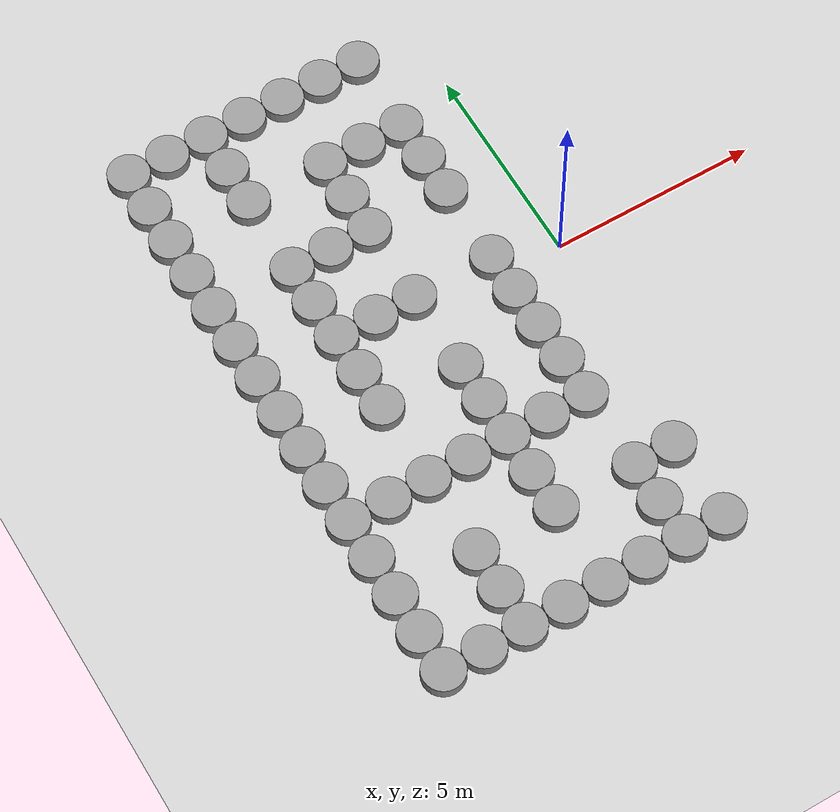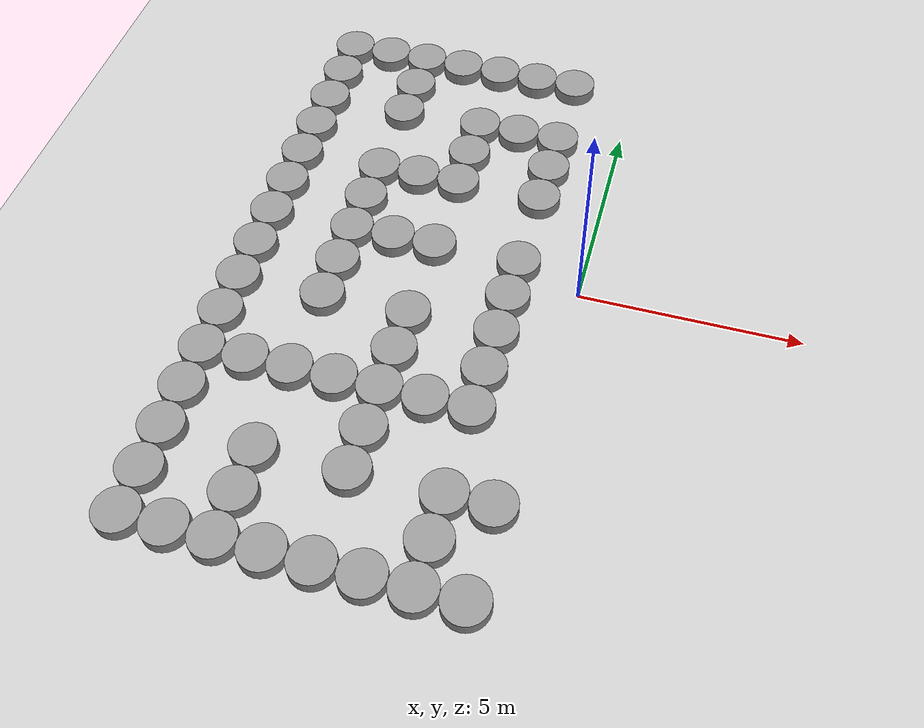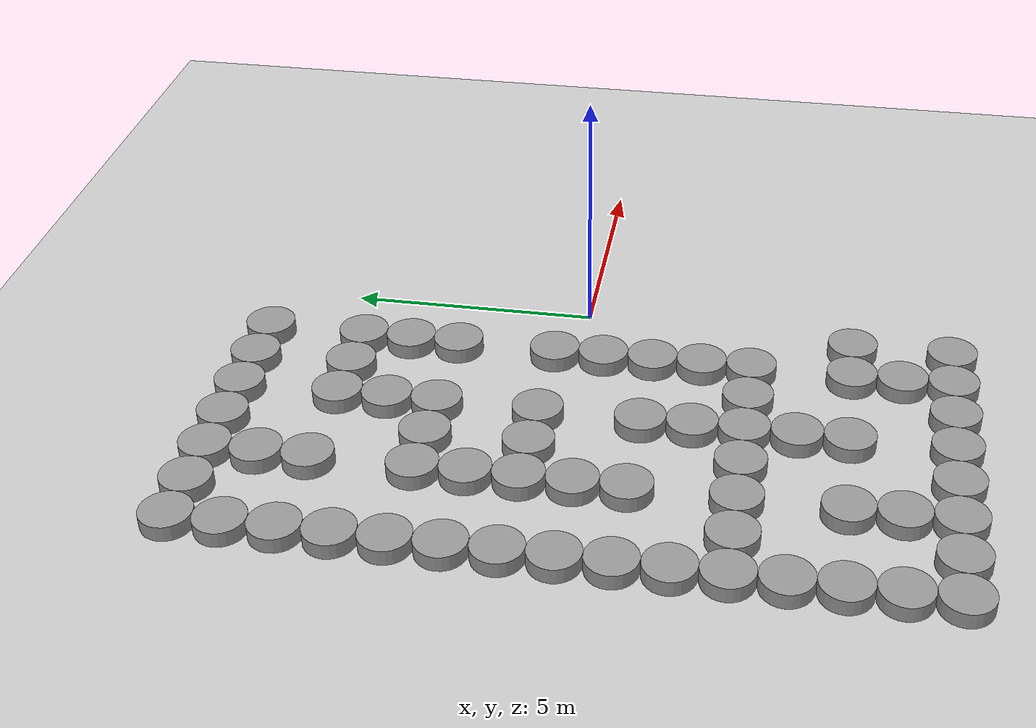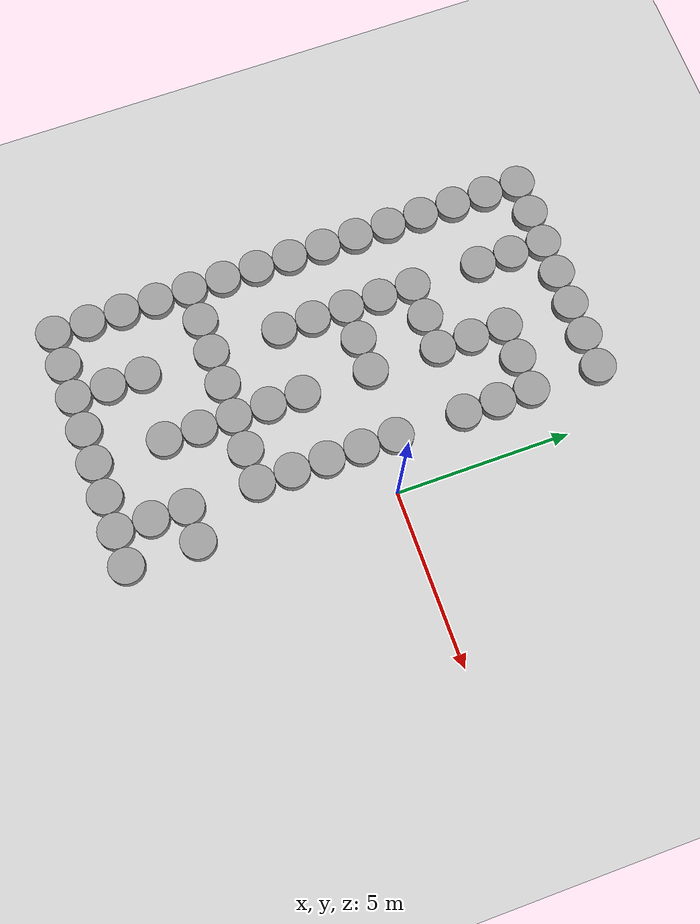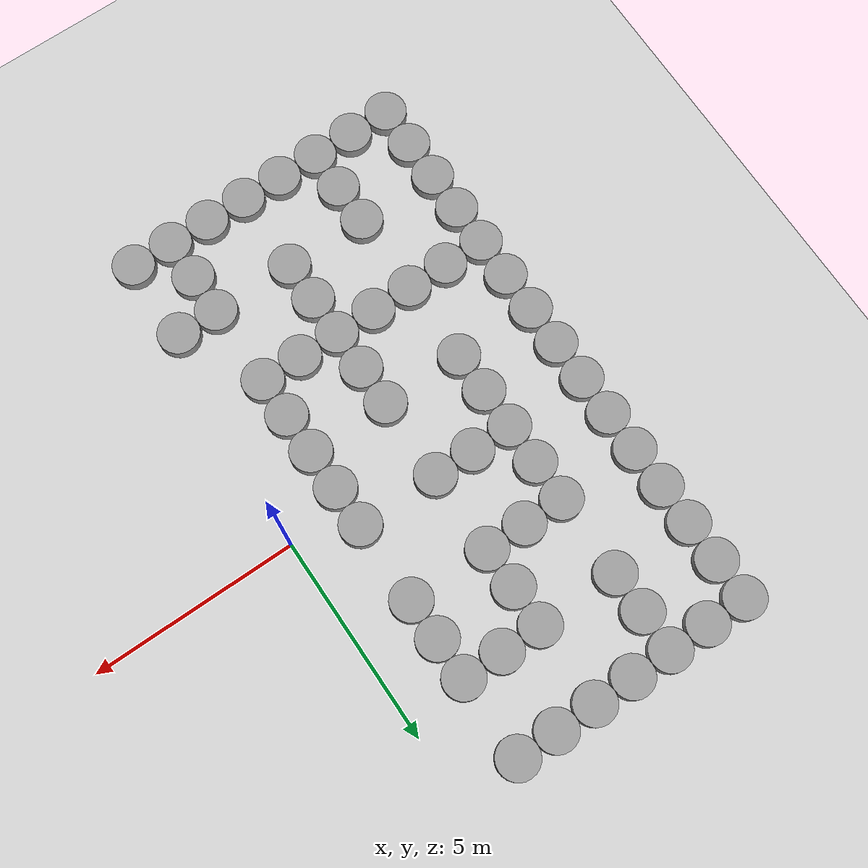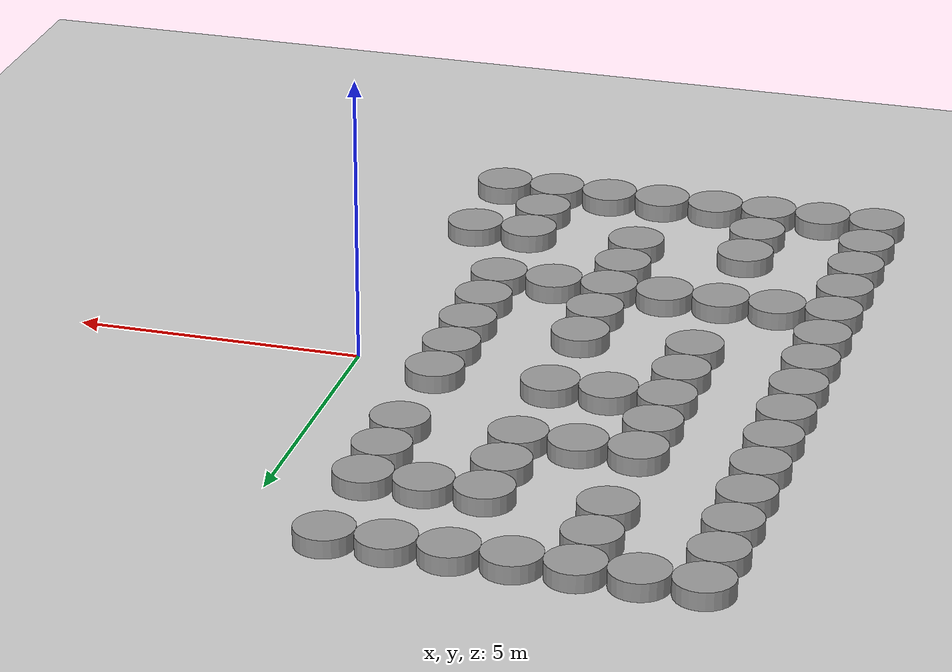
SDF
<sdf version="1.8">
 <world name="block_maze">
  <model name="ground_plane">
   <static>true</static>
   <link name="link">
    <collision name="collision">
     <geometry><plane><normal>0 0 1</normal><size>100 100</size></plane></geometry>
    </collision>
    <visual name="visual">
     <geometry><plane><normal>0 0 1</normal><size>100 100</size></plane></geometry>
     <material><ambient>0.5 0.5 0.5 1</ambient><diffuse>0.8 0.8 0.8 1</diffuse></material>
    </visual>
   </link>
  </model>
  <model name="wall_0_0">
   <static>true</static>
   <pose>-7.5 -7.5 0.1 0 0 0</pose>
   <link name="link">
    <collision name="collision">
     <geometry><cylinder><radius>0.5</radius><length>0.4</length></cylinder></geometry>
    </collision>
    <visual name="visual">
     <geometry><cylinder><radius>0.5</radius><length>0.4</length></cylinder></geometry>
     <material><ambient>0.6 0.6 0.6 1</ambient><diffuse>0.6 0.6 0.6 1</diffuse></material>
    </visual>
   </link>
  </model>
  <model name="wall_1_0">
   <static>true</static>
   <pose>-6.5 -7.5 0.1 0 0 0</pose>
   <link name="link">
    <collision name="collision">
     <geometry><cylinder><radius>0.5</radius><length>0.4</length></cylinder></geometry>
    </collision>
    <visual name="visual">
     <geometry><cylinder><radius>0.5</radius><length>0.4</length></cylinder></geometry>
     <material><ambient>0.6 0.6 0.6 1</ambient><diffuse>0.6 0.6 0.6 1</diffuse></material>
    </visual>
   </link>
  </model>
  <model name="wall_2_0">
   <static>true</static>
   <pose>-5.5 -7.5 0.1 0 0 0</pose>
   <link name="link">
    <collision name="collision">
     <geometry><cylinder><radius>0.5</radius><length>0.4</length></cylinder></geometry>
    </collision>
    <visual name="visual">
     <geometry><cylinder><radius>0.5</radius><length>0.4</length></cylinder></geometry>
     <material><ambient>0.6 0.6 0.6 1</ambient><diffuse>0.6 0.6 0.6 1</diffuse></material>
    </visual>
   </link>
  </model>
  <model name="wall_3_0">
   <static>true</static>
   <pose>-4.5 -7.5 0.1 0 0 0</pose>
   <link name="link">
    <collision name="collision">
     <geometry><cylinder><radius>0.5</radius><length>0.4</length></cylinder></geometry>
    </collision>
    <visual name="visual">
     <geometry><cylinder><radius>0.5</radius><length>0.4</length></cylinder></geometry>
     <material><ambient>0.6 0.6 0.6 1</ambient><diffuse>0.6 0.6 0.6 1</diffuse></material>
    </visual>
   </link>
  </model>
  <model name="wall_4_0">
   <static>true</static>
   <pose>-3.5 -7.5 0.1 0 0 0</pose>
   <link name="link">
    <collision name="collision">
     <geometry><cylinder><radius>0.5</radius><length>0.4</length></cylinder></geometry>
    </collision>
    <visual name="visual">
     <geometry><cylinder><radius>0.5</radius><length>0.4</length></cylinder></geometry>
     <material><ambient>0.6 0.6 0.6 1</ambient><diffuse>0.6 0.6 0.6 1</diffuse></material>
    </visual>
   </link>
  </model>
  <model name="wall_5_0">
   <static>true</static>
   <pose>-2.5 -7.5 0.1 0 0 0</pose>
   <link name="link">
    <collision name="collision">
     <geometry><cylinder><radius>0.5</radius><length>0.4</length></cylinder></geometry>
    </collision>
    <visual name="visual">
     <geometry><cylinder><radius>0.5</radius><length>0.4</length></cylinder></geometry>
     <material><ambient>0.6 0.6 0.6 1</ambient><diffuse>0.6 0.6 0.6 1</diffuse></material>
    </visual>
   </link>
  </model>
  <model name="wall_6_0">
   <static>true</static>
   <pose>-1.5 -7.5 0.1 0 0 0</pose>
   <link name="link">
    <collision name="collision">
     <geometry><cylinder><radius>0.5</radius><length>0.4</length></cylinder></geometry>
    </collision>
    <visual name="visual">
     <geometry><cylinder><radius>0.5</radius><length>0.4</length></cylinder></geometry>
     <material><ambient>0.6 0.6 0.6 1</ambient><diffuse>0.6 0.6 0.6 1</diffuse></material>
    </visual>
   </link>
  </model>
  <model name="wall_7_0">
   <static>true</static>
   <pose>-0.5 -7.5 0.1 0 0 0</pose>
   <link name="link">
    <collision name="collision">
     <geometry><cylinder><radius>0.5</radius><length>0.4</length></cylinder></geometry>
    </collision>
    <visual name="visual">
     <geometry><cylinder><radius>0.5</radius><length>0.4</length></cylinder></geometry>
     <material><ambient>0.6 0.6 0.6 1</ambient><diffuse>0.6 0.6 0.6 1</diffuse></material>
    </visual>
   </link>
  </model>
  <model name="wall_0_1">
   <static>true</static>
   <pose>-7.5 -6.5 0.1 0 0 0</pose>
   <link name="link">
    <collision name="collision">
     <geometry><cylinder><radius>0.5</radius><length>0.4</length></cylinder></geometry>
    </collision>
    <visual name="visual">
     <geometry><cylinder><radius>0.5</radius><length>0.4</length></cylinder></geometry>
     <material><ambient>0.6 0.6 0.6 1</ambient><diffuse>0.6 0.6 0.6 1</diffuse></material>
    </visual>
   </link>
  </model>
  <model name="wall_2_1">
   <static>true</static>
   <pose>-5.5 -6.5 0.1 0 0 0</pose>
   <link name="link">
    <collision name="collision">
     <geometry><cylinder><radius>0.5</radius><length>0.4</length></cylinder></geometry>
    </collision>
    <visual name="visual">
     <geometry><cylinder><radius>0.5</radius><length>0.4</length></cylinder></geometry>
     <material><ambient>0.6 0.6 0.6 1</ambient><diffuse>0.6 0.6 0.6 1</diffuse></material>
    </visual>
   </link>
  </model>
  <model name="wall_6_1">
   <static>true</static>
   <pose>-1.5 -6.5 0.1 0 0 0</pose>
   <link name="link">
    <collision name="collision">
     <geometry><cylinder><radius>0.5</radius><length>0.4</length></cylinder></geometry>
    </collision>
    <visual name="visual">
     <geometry><cylinder><radius>0.5</radius><length>0.4</length></cylinder></geometry>
     <material><ambient>0.6 0.6 0.6 1</ambient><diffuse>0.6 0.6 0.6 1</diffuse></material>
    </visual>
   </link>
  </model>
  <model name="wall_0_2">
   <static>true</static>
   <pose>-7.5 -5.5 0.1 0 0 0</pose>
   <link name="link">
    <collision name="collision">
     <geometry><cylinder><radius>0.5</radius><length>0.4</length></cylinder></geometry>
    </collision>
    <visual name="visual">
     <geometry><cylinder><radius>0.5</radius><length>0.4</length></cylinder></geometry>
     <material><ambient>0.6 0.6 0.6 1</ambient><diffuse>0.6 0.6 0.6 1</diffuse></material>
    </visual>
   </link>
  </model>
  <model name="wall_2_2">
   <static>true</static>
   <pose>-5.5 -5.5 0.1 0 0 0</pose>
   <link name="link">
    <collision name="collision">
     <geometry><cylinder><radius>0.5</radius><length>0.4</length></cylinder></geometry>
    </collision>
    <visual name="visual">
     <geometry><cylinder><radius>0.5</radius><length>0.4</length></cylinder></geometry>
     <material><ambient>0.6 0.6 0.6 1</ambient><diffuse>0.6 0.6 0.6 1</diffuse></material>
    </visual>
   </link>
  </model>
  <model name="wall_4_2">
   <static>true</static>
   <pose>-3.5 -5.5 0.1 0 0 0</pose>
   <link name="link">
    <collision name="collision">
     <geometry><cylinder><radius>0.5</radius><length>0.4</length></cylinder></geometry>
    </collision>
    <visual name="visual">
     <geometry><cylinder><radius>0.5</radius><length>0.4</length></cylinder></geometry>
     <material><ambient>0.6 0.6 0.6 1</ambient><diffuse>0.6 0.6 0.6 1</diffuse></material>
    </visual>
   </link>
  </model>
  <model name="wall_6_2">
   <static>true</static>
   <pose>-1.5 -5.5 0.1 0 0 0</pose>
   <link name="link">
    <collision name="collision">
     <geometry><cylinder><radius>0.5</radius><length>0.4</length></cylinder></geometry>
    </collision>
    <visual name="visual">
     <geometry><cylinder><radius>0.5</radius><length>0.4</length></cylinder></geometry>
     <material><ambient>0.6 0.6 0.6 1</ambient><diffuse>0.6 0.6 0.6 1</diffuse></material>
    </visual>
   </link>
  </model>
  <model name="wall_7_2">
   <static>true</static>
   <pose>-0.5 -5.5 0.1 0 0 0</pose>
   <link name="link">
    <collision name="collision">
     <geometry><cylinder><radius>0.5</radius><length>0.4</length></cylinder></geometry>
    </collision>
    <visual name="visual">
     <geometry><cylinder><radius>0.5</radius><length>0.4</length></cylinder></geometry>
     <material><ambient>0.6 0.6 0.6 1</ambient><diffuse>0.6 0.6 0.6 1</diffuse></material>
    </visual>
   </link>
  </model>
  <model name="wall_0_3">
   <static>true</static>
   <pose>-7.5 -4.5 0.1 0 0 0</pose>
   <link name="link">
    <collision name="collision">
     <geometry><cylinder><radius>0.5</radius><length>0.4</length></cylinder></geometry>
    </collision>
    <visual name="visual">
     <geometry><cylinder><radius>0.5</radius><length>0.4</length></cylinder></geometry>
     <material><ambient>0.6 0.6 0.6 1</ambient><diffuse>0.6 0.6 0.6 1</diffuse></material>
    </visual>
   </link>
  </model>
  <model name="wall_4_3">
   <static>true</static>
   <pose>-3.5 -4.5 0.1 0 0 0</pose>
   <link name="link">
    <collision name="collision">
     <geometry><cylinder><radius>0.5</radius><length>0.4</length></cylinder></geometry>
    </collision>
    <visual name="visual">
     <geometry><cylinder><radius>0.5</radius><length>0.4</length></cylinder></geometry>
     <material><ambient>0.6 0.6 0.6 1</ambient><diffuse>0.6 0.6 0.6 1</diffuse></material>
    </visual>
   </link>
  </model>
  <model name="wall_0_4">
   <static>true</static>
   <pose>-7.5 -3.5 0.1 0 0 0</pose>
   <link name="link">
    <collision name="collision">
     <geometry><cylinder><radius>0.5</radius><length>0.4</length></cylinder></geometry>
    </collision>
    <visual name="visual">
     <geometry><cylinder><radius>0.5</radius><length>0.4</length></cylinder></geometry>
     <material><ambient>0.6 0.6 0.6 1</ambient><diffuse>0.6 0.6 0.6 1</diffuse></material>
    </visual>
   </link>
  </model>
  <model name="wall_1_4">
   <static>true</static>
   <pose>-6.5 -3.5 0.1 0 0 0</pose>
   <link name="link">
    <collision name="collision">
     <geometry><cylinder><radius>0.5</radius><length>0.4</length></cylinder></geometry>
    </collision>
    <visual name="visual">
     <geometry><cylinder><radius>0.5</radius><length>0.4</length></cylinder></geometry>
     <material><ambient>0.6 0.6 0.6 1</ambient><diffuse>0.6 0.6 0.6 1</diffuse></material>
    </visual>
   </link>
  </model>
  <model name="wall_2_4">
   <static>true</static>
   <pose>-5.5 -3.5 0.1 0 0 0</pose>
   <link name="link">
    <collision name="collision">
     <geometry><cylinder><radius>0.5</radius><length>0.4</length></cylinder></geometry>
    </collision>
    <visual name="visual">
     <geometry><cylinder><radius>0.5</radius><length>0.4</length></cylinder></geometry>
     <material><ambient>0.6 0.6 0.6 1</ambient><diffuse>0.6 0.6 0.6 1</diffuse></material>
    </visual>
   </link>
  </model>
  <model name="wall_3_4">
   <static>true</static>
   <pose>-4.5 -3.5 0.1 0 0 0</pose>
   <link name="link">
    <collision name="collision">
     <geometry><cylinder><radius>0.5</radius><length>0.4</length></cylinder></geometry>
    </collision>
    <visual name="visual">
     <geometry><cylinder><radius>0.5</radius><length>0.4</length></cylinder></geometry>
     <material><ambient>0.6 0.6 0.6 1</ambient><diffuse>0.6 0.6 0.6 1</diffuse></material>
    </visual>
   </link>
  </model>
  <model name="wall_4_4">
   <static>true</static>
   <pose>-3.5 -3.5 0.1 0 0 0</pose>
   <link name="link">
    <collision name="collision">
     <geometry><cylinder><radius>0.5</radius><length>0.4</length></cylinder></geometry>
    </collision>
    <visual name="visual">
     <geometry><cylinder><radius>0.5</radius><length>0.4</length></cylinder></geometry>
     <material><ambient>0.6 0.6 0.6 1</ambient><diffuse>0.6 0.6 0.6 1</diffuse></material>
    </visual>
   </link>
  </model>
  <model name="wall_5_4">
   <static>true</static>
   <pose>-2.5 -3.5 0.1 0 0 0</pose>
   <link name="link">
    <collision name="collision">
     <geometry><cylinder><radius>0.5</radius><length>0.4</length></cylinder></geometry>
    </collision>
    <visual name="visual">
     <geometry><cylinder><radius>0.5</radius><length>0.4</length></cylinder></geometry>
     <material><ambient>0.6 0.6 0.6 1</ambient><diffuse>0.6 0.6 0.6 1</diffuse></material>
    </visual>
   </link>
  </model>
  <model name="wall_6_4">
   <static>true</static>
   <pose>-1.5 -3.5 0.1 0 0 0</pose>
   <link name="link">
    <collision name="collision">
     <geometry><cylinder><radius>0.5</radius><length>0.4</length></cylinder></geometry>
    </collision>
    <visual name="visual">
     <geometry><cylinder><radius>0.5</radius><length>0.4</length></cylinder></geometry>
     <material><ambient>0.6 0.6 0.6 1</ambient><diffuse>0.6 0.6 0.6 1</diffuse></material>
    </visual>
   </link>
  </model>
  <model name="wall_0_5">
   <static>true</static>
   <pose>-7.5 -2.5 0.1 0 0 0</pose>
   <link name="link">
    <collision name="collision">
     <geometry><cylinder><radius>0.5</radius><length>0.4</length></cylinder></geometry>
    </collision>
    <visual name="visual">
     <geometry><cylinder><radius>0.5</radius><length>0.4</length></cylinder></geometry>
     <material><ambient>0.6 0.6 0.6 1</ambient><diffuse>0.6 0.6 0.6 1</diffuse></material>
    </visual>
   </link>
  </model>
  <model name="wall_4_5">
   <static>true</static>
   <pose>-3.5 -2.5 0.1 0 0 0</pose>
   <link name="link">
    <collision name="collision">
     <geometry><cylinder><radius>0.5</radius><length>0.4</length></cylinder></geometry>
    </collision>
    <visual name="visual">
     <geometry><cylinder><radius>0.5</radius><length>0.4</length></cylinder></geometry>
     <material><ambient>0.6 0.6 0.6 1</ambient><diffuse>0.6 0.6 0.6 1</diffuse></material>
    </visual>
   </link>
  </model>
  <model name="wall_6_5">
   <static>true</static>
   <pose>-1.5 -2.5 0.1 0 0 0</pose>
   <link name="link">
    <collision name="collision">
     <geometry><cylinder><radius>0.5</radius><length>0.4</length></cylinder></geometry>
    </collision>
    <visual name="visual">
     <geometry><cylinder><radius>0.5</radius><length>0.4</length></cylinder></geometry>
     <material><ambient>0.6 0.6 0.6 1</ambient><diffuse>0.6 0.6 0.6 1</diffuse></material>
    </visual>
   </link>
  </model>
  <model name="wall_0_6">
   <static>true</static>
   <pose>-7.5 -1.5 0.1 0 0 0</pose>
   <link name="link">
    <collision name="collision">
     <geometry><cylinder><radius>0.5</radius><length>0.4</length></cylinder></geometry>
    </collision>
    <visual name="visual">
     <geometry><cylinder><radius>0.5</radius><length>0.4</length></cylinder></geometry>
     <material><ambient>0.6 0.6 0.6 1</ambient><diffuse>0.6 0.6 0.6 1</diffuse></material>
    </visual>
   </link>
  </model>
  <model name="wall_2_6">
   <static>true</static>
   <pose>-5.5 -1.5 0.1 0 0 0</pose>
   <link name="link">
    <collision name="collision">
     <geometry><cylinder><radius>0.5</radius><length>0.4</length></cylinder></geometry>
    </collision>
    <visual name="visual">
     <geometry><cylinder><radius>0.5</radius><length>0.4</length></cylinder></geometry>
     <material><ambient>0.6 0.6 0.6 1</ambient><diffuse>0.6 0.6 0.6 1</diffuse></material>
    </visual>
   </link>
  </model>
  <model name="wall_4_6">
   <static>true</static>
   <pose>-3.5 -1.5 0.1 0 0 0</pose>
   <link name="link">
    <collision name="collision">
     <geometry><cylinder><radius>0.5</radius><length>0.4</length></cylinder></geometry>
    </collision>
    <visual name="visual">
     <geometry><cylinder><radius>0.5</radius><length>0.4</length></cylinder></geometry>
     <material><ambient>0.6 0.6 0.6 1</ambient><diffuse>0.6 0.6 0.6 1</diffuse></material>
    </visual>
   </link>
  </model>
  <model name="wall_6_6">
   <static>true</static>
   <pose>-1.5 -1.5 0.1 0 0 0</pose>
   <link name="link">
    <collision name="collision">
     <geometry><cylinder><radius>0.5</radius><length>0.4</length></cylinder></geometry>
    </collision>
    <visual name="visual">
     <geometry><cylinder><radius>0.5</radius><length>0.4</length></cylinder></geometry>
     <material><ambient>0.6 0.6 0.6 1</ambient><diffuse>0.6 0.6 0.6 1</diffuse></material>
    </visual>
   </link>
  </model>
  <model name="wall_0_7">
   <static>true</static>
   <pose>-7.5 -0.5 0.1 0 0 0</pose>
   <link name="link">
    <collision name="collision">
     <geometry><cylinder><radius>0.5</radius><length>0.4</length></cylinder></geometry>
    </collision>
    <visual name="visual">
     <geometry><cylinder><radius>0.5</radius><length>0.4</length></cylinder></geometry>
     <material><ambient>0.6 0.6 0.6 1</ambient><diffuse>0.6 0.6 0.6 1</diffuse></material>
    </visual>
   </link>
  </model>
  <model name="wall_2_7">
   <static>true</static>
   <pose>-5.5 -0.5 0.1 0 0 0</pose>
   <link name="link">
    <collision name="collision">
     <geometry><cylinder><radius>0.5</radius><length>0.4</length></cylinder></geometry>
    </collision>
    <visual name="visual">
     <geometry><cylinder><radius>0.5</radius><length>0.4</length></cylinder></geometry>
     <material><ambient>0.6 0.6 0.6 1</ambient><diffuse>0.6 0.6 0.6 1</diffuse></material>
    </visual>
   </link>
  </model>
  <model name="wall_6_7">
   <static>true</static>
   <pose>-1.5 -0.5 0.1 0 0 0</pose>
   <link name="link">
    <collision name="collision">
     <geometry><cylinder><radius>0.5</radius><length>0.4</length></cylinder></geometry>
    </collision>
    <visual name="visual">
     <geometry><cylinder><radius>0.5</radius><length>0.4</length></cylinder></geometry>
     <material><ambient>0.6 0.6 0.6 1</ambient><diffuse>0.6 0.6 0.6 1</diffuse></material>
    </visual>
   </link>
  </model>
  <model name="wall_0_8">
   <static>true</static>
   <pose>-7.5 0.5 0.1 0 0 0</pose>
   <link name="link">
    <collision name="collision">
     <geometry><cylinder><radius>0.5</radius><length>0.4</length></cylinder></geometry>
    </collision>
    <visual name="visual">
     <geometry><cylinder><radius>0.5</radius><length>0.4</length></cylinder></geometry>
     <material><ambient>0.6 0.6 0.6 1</ambient><diffuse>0.6 0.6 0.6 1</diffuse></material>
    </visual>
   </link>
  </model>
  <model name="wall_2_8">
   <static>true</static>
   <pose>-5.5 0.5 0.1 0 0 0</pose>
   <link name="link">
    <collision name="collision">
     <geometry><cylinder><radius>0.5</radius><length>0.4</length></cylinder></geometry>
    </collision>
    <visual name="visual">
     <geometry><cylinder><radius>0.5</radius><length>0.4</length></cylinder></geometry>
     <material><ambient>0.6 0.6 0.6 1</ambient><diffuse>0.6 0.6 0.6 1</diffuse></material>
    </visual>
   </link>
  </model>
  <model name="wall_3_8">
   <static>true</static>
   <pose>-4.5 0.5 0.1 0 0 0</pose>
   <link name="link">
    <collision name="collision">
     <geometry><cylinder><radius>0.5</radius><length>0.4</length></cylinder></geometry>
    </collision>
    <visual name="visual">
     <geometry><cylinder><radius>0.5</radius><length>0.4</length></cylinder></geometry>
     <material><ambient>0.6 0.6 0.6 1</ambient><diffuse>0.6 0.6 0.6 1</diffuse></material>
    </visual>
   </link>
  </model>
  <model name="wall_4_8">
   <static>true</static>
   <pose>-3.5 0.5 0.1 0 0 0</pose>
   <link name="link">
    <collision name="collision">
     <geometry><cylinder><radius>0.5</radius><length>0.4</length></cylinder></geometry>
    </collision>
    <visual name="visual">
     <geometry><cylinder><radius>0.5</radius><length>0.4</length></cylinder></geometry>
     <material><ambient>0.6 0.6 0.6 1</ambient><diffuse>0.6 0.6 0.6 1</diffuse></material>
    </visual>
   </link>
  </model>
  <model name="wall_6_8">
   <static>true</static>
   <pose>-1.5 0.5 0.1 0 0 0</pose>
   <link name="link">
    <collision name="collision">
     <geometry><cylinder><radius>0.5</radius><length>0.4</length></cylinder></geometry>
    </collision>
    <visual name="visual">
     <geometry><cylinder><radius>0.5</radius><length>0.4</length></cylinder></geometry>
     <material><ambient>0.6 0.6 0.6 1</ambient><diffuse>0.6 0.6 0.6 1</diffuse></material>
    </visual>
   </link>
  </model>
  <model name="wall_0_9">
   <static>true</static>
   <pose>-7.5 1.5 0.1 0 0 0</pose>
   <link name="link">
    <collision name="collision">
     <geometry><cylinder><radius>0.5</radius><length>0.4</length></cylinder></geometry>
    </collision>
    <visual name="visual">
     <geometry><cylinder><radius>0.5</radius><length>0.4</length></cylinder></geometry>
     <material><ambient>0.6 0.6 0.6 1</ambient><diffuse>0.6 0.6 0.6 1</diffuse></material>
    </visual>
   </link>
  </model>
  <model name="wall_2_9">
   <static>true</static>
   <pose>-5.5 1.5 0.1 0 0 0</pose>
   <link name="link">
    <collision name="collision">
     <geometry><cylinder><radius>0.5</radius><length>0.4</length></cylinder></geometry>
    </collision>
    <visual name="visual">
     <geometry><cylinder><radius>0.5</radius><length>0.4</length></cylinder></geometry>
     <material><ambient>0.6 0.6 0.6 1</ambient><diffuse>0.6 0.6 0.6 1</diffuse></material>
    </visual>
   </link>
  </model>
  <model name="wall_0_10">
   <static>true</static>
   <pose>-7.5 2.5 0.1 0 0 0</pose>
   <link name="link">
    <collision name="collision">
     <geometry><cylinder><radius>0.5</radius><length>0.4</length></cylinder></geometry>
    </collision>
    <visual name="visual">
     <geometry><cylinder><radius>0.5</radius><length>0.4</length></cylinder></geometry>
     <material><ambient>0.6 0.6 0.6 1</ambient><diffuse>0.6 0.6 0.6 1</diffuse></material>
    </visual>
   </link>
  </model>
  <model name="wall_2_10">
   <static>true</static>
   <pose>-5.5 2.5 0.1 0 0 0</pose>
   <link name="link">
    <collision name="collision">
     <geometry><cylinder><radius>0.5</radius><length>0.4</length></cylinder></geometry>
    </collision>
    <visual name="visual">
     <geometry><cylinder><radius>0.5</radius><length>0.4</length></cylinder></geometry>
     <material><ambient>0.6 0.6 0.6 1</ambient><diffuse>0.6 0.6 0.6 1</diffuse></material>
    </visual>
   </link>
  </model>
  <model name="wall_3_10">
   <static>true</static>
   <pose>-4.5 2.5 0.1 0 0 0</pose>
   <link name="link">
    <collision name="collision">
     <geometry><cylinder><radius>0.5</radius><length>0.4</length></cylinder></geometry>
    </collision>
    <visual name="visual">
     <geometry><cylinder><radius>0.5</radius><length>0.4</length></cylinder></geometry>
     <material><ambient>0.6 0.6 0.6 1</ambient><diffuse>0.6 0.6 0.6 1</diffuse></material>
    </visual>
   </link>
  </model>
  <model name="wall_4_10">
   <static>true</static>
   <pose>-3.5 2.5 0.1 0 0 0</pose>
   <link name="link">
    <collision name="collision">
     <geometry><cylinder><radius>0.5</radius><length>0.4</length></cylinder></geometry>
    </collision>
    <visual name="visual">
     <geometry><cylinder><radius>0.5</radius><length>0.4</length></cylinder></geometry>
     <material><ambient>0.6 0.6 0.6 1</ambient><diffuse>0.6 0.6 0.6 1</diffuse></material>
    </visual>
   </link>
  </model>
  <model name="wall_6_10">
   <static>true</static>
   <pose>-1.5 2.5 0.1 0 0 0</pose>
   <link name="link">
    <collision name="collision">
     <geometry><cylinder><radius>0.5</radius><length>0.4</length></cylinder></geometry>
    </collision>
    <visual name="visual">
     <geometry><cylinder><radius>0.5</radius><length>0.4</length></cylinder></geometry>
     <material><ambient>0.6 0.6 0.6 1</ambient><diffuse>0.6 0.6 0.6 1</diffuse></material>
    </visual>
   </link>
  </model>
  <model name="wall_0_11">
   <static>true</static>
   <pose>-7.5 3.5 0.1 0 0 0</pose>
   <link name="link">
    <collision name="collision">
     <geometry><cylinder><radius>0.5</radius><length>0.4</length></cylinder></geometry>
    </collision>
    <visual name="visual">
     <geometry><cylinder><radius>0.5</radius><length>0.4</length></cylinder></geometry>
     <material><ambient>0.6 0.6 0.6 1</ambient><diffuse>0.6 0.6 0.6 1</diffuse></material>
    </visual>
   </link>
  </model>
  <model name="wall_4_11">
   <static>true</static>
   <pose>-3.5 3.5 0.1 0 0 0</pose>
   <link name="link">
    <collision name="collision">
     <geometry><cylinder><radius>0.5</radius><length>0.4</length></cylinder></geometry>
    </collision>
    <visual name="visual">
     <geometry><cylinder><radius>0.5</radius><length>0.4</length></cylinder></geometry>
     <material><ambient>0.6 0.6 0.6 1</ambient><diffuse>0.6 0.6 0.6 1</diffuse></material>
    </visual>
   </link>
  </model>
  <model name="wall_6_11">
   <static>true</static>
   <pose>-1.5 3.5 0.1 0 0 0</pose>
   <link name="link">
    <collision name="collision">
     <geometry><cylinder><radius>0.5</radius><length>0.4</length></cylinder></geometry>
    </collision>
    <visual name="visual">
     <geometry><cylinder><radius>0.5</radius><length>0.4</length></cylinder></geometry>
     <material><ambient>0.6 0.6 0.6 1</ambient><diffuse>0.6 0.6 0.6 1</diffuse></material>
    </visual>
   </link>
  </model>
  <model name="wall_0_12">
   <static>true</static>
   <pose>-7.5 4.5 0.1 0 0 0</pose>
   <link name="link">
    <collision name="collision">
     <geometry><cylinder><radius>0.5</radius><length>0.4</length></cylinder></geometry>
    </collision>
    <visual name="visual">
     <geometry><cylinder><radius>0.5</radius><length>0.4</length></cylinder></geometry>
     <material><ambient>0.6 0.6 0.6 1</ambient><diffuse>0.6 0.6 0.6 1</diffuse></material>
    </visual>
   </link>
  </model>
  <model name="wall_2_12">
   <static>true</static>
   <pose>-5.5 4.5 0.1 0 0 0</pose>
   <link name="link">
    <collision name="collision">
     <geometry><cylinder><radius>0.5</radius><length>0.4</length></cylinder></geometry>
    </collision>
    <visual name="visual">
     <geometry><cylinder><radius>0.5</radius><length>0.4</length></cylinder></geometry>
     <material><ambient>0.6 0.6 0.6 1</ambient><diffuse>0.6 0.6 0.6 1</diffuse></material>
    </visual>
   </link>
  </model>
  <model name="wall_4_12">
   <static>true</static>
   <pose>-3.5 4.5 0.1 0 0 0</pose>
   <link name="link">
    <collision name="collision">
     <geometry><cylinder><radius>0.5</radius><length>0.4</length></cylinder></geometry>
    </collision>
    <visual name="visual">
     <geometry><cylinder><radius>0.5</radius><length>0.4</length></cylinder></geometry>
     <material><ambient>0.6 0.6 0.6 1</ambient><diffuse>0.6 0.6 0.6 1</diffuse></material>
    </visual>
   </link>
  </model>
  <model name="wall_5_12">
   <static>true</static>
   <pose>-2.5 4.5 0.1 0 0 0</pose>
   <link name="link">
    <collision name="collision">
     <geometry><cylinder><radius>0.5</radius><length>0.4</length></cylinder></geometry>
    </collision>
    <visual name="visual">
     <geometry><cylinder><radius>0.5</radius><length>0.4</length></cylinder></geometry>
     <material><ambient>0.6 0.6 0.6 1</ambient><diffuse>0.6 0.6 0.6 1</diffuse></material>
    </visual>
   </link>
  </model>
  <model name="wall_6_12">
   <static>true</static>
   <pose>-1.5 4.5 0.1 0 0 0</pose>
   <link name="link">
    <collision name="collision">
     <geometry><cylinder><radius>0.5</radius><length>0.4</length></cylinder></geometry>
    </collision>
    <visual name="visual">
     <geometry><cylinder><radius>0.5</radius><length>0.4</length></cylinder></geometry>
     <material><ambient>0.6 0.6 0.6 1</ambient><diffuse>0.6 0.6 0.6 1</diffuse></material>
    </visual>
   </link>
  </model>
  <model name="wall_0_13">
   <static>true</static>
   <pose>-7.5 5.5 0.1 0 0 0</pose>
   <link name="link">
    <collision name="collision">
     <geometry><cylinder><radius>0.5</radius><length>0.4</length></cylinder></geometry>
    </collision>
    <visual name="visual">
     <geometry><cylinder><radius>0.5</radius><length>0.4</length></cylinder></geometry>
     <material><ambient>0.6 0.6 0.6 1</ambient><diffuse>0.6 0.6 0.6 1</diffuse></material>
    </visual>
   </link>
  </model>
  <model name="wall_2_13">
   <static>true</static>
   <pose>-5.5 5.5 0.1 0 0 0</pose>
   <link name="link">
    <collision name="collision">
     <geometry><cylinder><radius>0.5</radius><length>0.4</length></cylinder></geometry>
    </collision>
    <visual name="visual">
     <geometry><cylinder><radius>0.5</radius><length>0.4</length></cylinder></geometry>
     <material><ambient>0.6 0.6 0.6 1</ambient><diffuse>0.6 0.6 0.6 1</diffuse></material>
    </visual>
   </link>
  </model>
  <model name="wall_0_14">
   <static>true</static>
   <pose>-7.5 6.5 0.1 0 0 0</pose>
   <link name="link">
    <collision name="collision">
     <geometry><cylinder><radius>0.5</radius><length>0.4</length></cylinder></geometry>
    </collision>
    <visual name="visual">
     <geometry><cylinder><radius>0.5</radius><length>0.4</length></cylinder></geometry>
     <material><ambient>0.6 0.6 0.6 1</ambient><diffuse>0.6 0.6 0.6 1</diffuse></material>
    </visual>
   </link>
  </model>
  <model name="wall_1_14">
   <static>true</static>
   <pose>-6.5 6.5 0.1 0 0 0</pose>
   <link name="link">
    <collision name="collision">
     <geometry><cylinder><radius>0.5</radius><length>0.4</length></cylinder></geometry>
    </collision>
    <visual name="visual">
     <geometry><cylinder><radius>0.5</radius><length>0.4</length></cylinder></geometry>
     <material><ambient>0.6 0.6 0.6 1</ambient><diffuse>0.6 0.6 0.6 1</diffuse></material>
    </visual>
   </link>
  </model>
  <model name="wall_2_14">
   <static>true</static>
   <pose>-5.5 6.5 0.1 0 0 0</pose>
   <link name="link">
    <collision name="collision">
     <geometry><cylinder><radius>0.5</radius><length>0.4</length></cylinder></geometry>
    </collision>
    <visual name="visual">
     <geometry><cylinder><radius>0.5</radius><length>0.4</length></cylinder></geometry>
     <material><ambient>0.6 0.6 0.6 1</ambient><diffuse>0.6 0.6 0.6 1</diffuse></material>
    </visual>
   </link>
  </model>
  <model name="wall_3_14">
   <static>true</static>
   <pose>-4.5 6.5 0.1 0 0 0</pose>
   <link name="link">
    <collision name="collision">
     <geometry><cylinder><radius>0.5</radius><length>0.4</length></cylinder></geometry>
    </collision>
    <visual name="visual">
     <geometry><cylinder><radius>0.5</radius><length>0.4</length></cylinder></geometry>
     <material><ambient>0.6 0.6 0.6 1</ambient><diffuse>0.6 0.6 0.6 1</diffuse></material>
    </visual>
   </link>
  </model>
  <model name="wall_4_14">
   <static>true</static>
   <pose>-3.5 6.5 0.1 0 0 0</pose>
   <link name="link">
    <collision name="collision">
     <geometry><cylinder><radius>0.5</radius><length>0.4</length></cylinder></geometry>
    </collision>
    <visual name="visual">
     <geometry><cylinder><radius>0.5</radius><length>0.4</length></cylinder></geometry>
     <material><ambient>0.6 0.6 0.6 1</ambient><diffuse>0.6 0.6 0.6 1</diffuse></material>
    </visual>
   </link>
  </model>
  <model name="wall_5_14">
   <static>true</static>
   <pose>-2.5 6.5 0.1 0 0 0</pose>
   <link name="link">
    <collision name="collision">
     <geometry><cylinder><radius>0.5</radius><length>0.4</length></cylinder></geometry>
    </collision>
    <visual name="visual">
     <geometry><cylinder><radius>0.5</radius><length>0.4</length></cylinder></geometry>
     <material><ambient>0.6 0.6 0.6 1</ambient><diffuse>0.6 0.6 0.6 1</diffuse></material>
    </visual>
   </link>
  </model>
  <model name="wall_6_14">
   <static>true</static>
   <pose>-1.5 6.5 0.1 0 0 0</pose>
   <link name="link">
    <collision name="collision">
     <geometry><cylinder><radius>0.5</radius><length>0.4</length></cylinder></geometry>
    </collision>
    <visual name="visual">
     <geometry><cylinder><radius>0.5</radius><length>0.4</length></cylinder></geometry>
     <material><ambient>0.6 0.6 0.6 1</ambient><diffuse>0.6 0.6 0.6 1</diffuse></material>
    </visual>
   </link>
  </model>
 </world>
</sdf>
